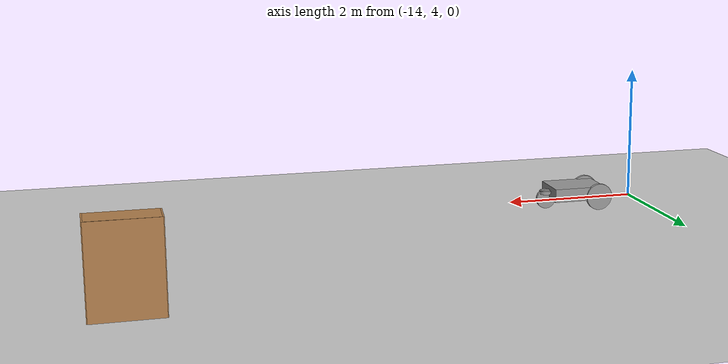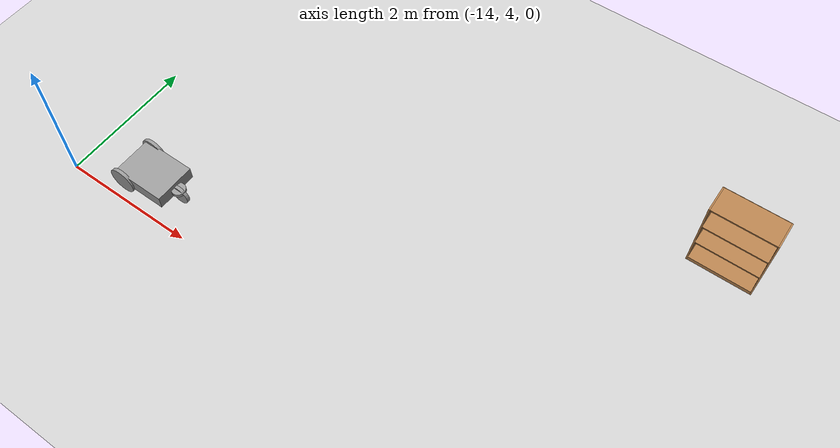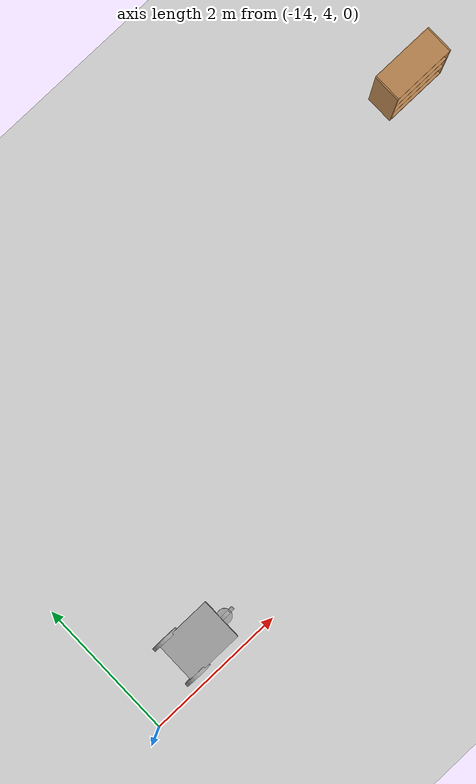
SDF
<sdf version="1.6">
 <world name="default">
  <model name="ground_plane">
   <static>1</static>
   <link name="link">
    <collision name="collision">
     <geometry><plane><normal>0 0 1</normal><size>100 100</size></plane></geometry>
     <surface><friction><ode><mu>100</mu><mu2>50</mu2></ode></friction></surface>
    </collision>
    <visual name="visual">
     <cast_shadows>0</cast_shadows>
     <geometry><plane><normal>0 0 1</normal><size>100 100</size></plane></geometry>
     <material>
      <script><uri>file://media/materials/scripts/gazebo.material</uri><name>Gazebo/Grey</name></script>
     </material>
    </visual>
   </link>
  </model>
  <model name="bookshelf_0">
   <static>1</static>
   <link name="link">
    <inertial><mass>1</mass></inertial>
    <collision name="back">
     <pose>0 0.005 0.6 0 -0 0</pose>
     <geometry><box><size>0.9 0.01 1.2</size></box></geometry>
    </collision>
    <visual name="visual1">
     <pose>0 0.005 0.6 0 -0 0</pose>
     <geometry><box><size>0.9 0.01 1.2</size></box></geometry>
     <material>
      <script><uri>file://media/materials/scripts/gazebo.material</uri><name>Gazebo/Wood</name></script>
     </material>
    </visual>
    <collision name="left_side">
     <pose>0.45 -0.195 0.6 0 -0 0</pose>
     <geometry><box><size>0.02 0.4 1.2</size></box></geometry>
    </collision>
    <visual name="visual2">
     <pose>0.45 -0.195 0.6 0 -0 0</pose>
     <geometry><box><size>0.02 0.4 1.2</size></box></geometry>
     <material>
      <script><uri>file://media/materials/scripts/gazebo.material</uri><name>Gazebo/Wood</name></script>
     </material>
    </visual>
    <collision name="right_side">
     <pose>-0.45 -0.195 0.6 0 -0 0</pose>
     <geometry><box><size>0.02 0.4 1.2</size></box></geometry>
    </collision>
    <visual name="visual3">
     <pose>-0.45 -0.195 0.6 0 -0 0</pose>
     <geometry><box><size>0.02 0.4 1.2</size></box></geometry>
     <material>
      <script><uri>file://media/materials/scripts/gazebo.material</uri><name>Gazebo/Wood</name></script>
     </material>
    </visual>
    <collision name="bottom">
     <pose>0 -0.195 0.03 0 -0 0</pose>
     <geometry><box><size>0.88 0.4 0.06</size></box></geometry>
    </collision>
    <visual name="visual4">
     <pose>0 -0.195 0.03 0 -0 0</pose>
     <geometry><box><size>0.88 0.4 0.06</size></box></geometry>
     <material>
      <script><uri>file://media/materials/scripts/gazebo.material</uri><name>Gazebo/Wood</name></script>
     </material>
    </visual>
    <collision name="top">
     <pose>0 -0.195 1.19 0 -0 0</pose>
     <geometry><box><size>0.88 0.4 0.02</size></box></geometry>
    </collision>
    <visual name="visual5">
     <pose>0 -0.195 1.19 0 -0 0</pose>
     <geometry><box><size>0.88 0.4 0.02</size></box></geometry>
     <material>
      <script><uri>file://media/materials/scripts/gazebo.material</uri><name>Gazebo/Wood</name></script>
     </material>
    </visual>
    <collision name="low_shelf">
     <pose>0 -0.195 0.43 0 -0 0</pose>
     <geometry><box><size>0.88 0.4 0.02</size></box></geometry>
    </collision>
    <visual name="visual6">
     <pose>0 -0.195 0.43 0 -0 0</pose>
     <geometry><box><size>0.88 0.4 0.02</size></box></geometry>
     <material>
      <script><uri>file://media/materials/scripts/gazebo.material</uri><name>Gazebo/Wood</name></script>
     </material>
    </visual>
    <collision name="high_shelf">
     <pose>0 -0.195 0.8 0 -0 0</pose>
     <geometry><box><size>0.88 0.4 0.02</size></box></geometry>
    </collision>
    <visual name="visual7">
     <pose>0 -0.195 0.8 0 -0 0</pose>
     <geometry><box><size>0.88 0.4 0.02</size></box></geometry>
     <material>
      <script><uri>file://media/materials/scripts/gazebo.material</uri><name>Gazebo/Wood</name></script>
     </material>
    </visual>
   </link>
   <pose>-5.99911 8.00478 0 0 -0 0</pose>
  </model>
  <model name="mycart_clone">
   <link name="link_1">
    <pose>-0.06 0 0.04 0 -0 0</pose>
    <inertial>
     <mass>1</mass>
     <inertia>
      <ixx>0.166667</ixx>
      <ixy>0</ixy>
      <ixz>0</ixz>
      <iyy>0.166667</iyy>
      <iyz>0</iyz>
      <izz>0.166667</izz>
     </inertia>
    </inertial>
    <visual name="visual">
     <geometry><box><size>0.8 0.6 0.2</size></box></geometry>
     <material>
      <lighting>1</lighting>
      <script><uri>file://media/materials/scripts/gazebo.material</uri><name>Gazebo/Grey</name></script>
      <shader type="pixel"><normal_map>__default__</normal_map></shader>
      <ambient>0.3 0.3 0.3 1</ambient>
      <diffuse>0.7 0.7 0.7 1</diffuse>
      <specular>0.01 0.01 0.01 1</specular>
      <emissive>0 0 0 1</emissive>
     </material>
    </visual>
    <collision name="collision">
     <geometry><box><size>0.8 0.6 0.2</size></box></geometry>
     <surface>
      <friction>
       <ode><mu>1</mu><mu2>1</mu2><fdir1>0 0 0</fdir1><slip1>0</slip1><slip2>0</slip2></ode>
       <torsional>
        <coefficient>1</coefficient>
        <patch_radius>0</patch_radius>
        <surface_radius>0</surface_radius>
        <use_patch_radius>1</use_patch_radius>
        <ode><slip>0</slip></ode>
       </torsional>
      </friction>
      <bounce><restitution_coefficient>0</restitution_coefficient><threshold>1e+06</threshold></bounce>
      <contact>
       <collide_without_contact>0</collide_without_contact>
       <collide_without_contact_bitmask>1</collide_without_contact_bitmask>
       <collide_bitmask>1</collide_bitmask>
       <ode>
        <soft_cfm>0</soft_cfm>
        <soft_erp>0.2</soft_erp>
        <kp>1e+13</kp>
        <kd>1</kd>
        <max_vel>0.01</max_vel>
        <min_depth>0</min_depth>
       </ode>
       <bullet>
        <split_impulse>1</split_impulse>
        <split_impulse_penetration_threshold>-0.01</split_impulse_penetration_threshold>
        <soft_cfm>0</soft_cfm>
        <soft_erp>0.2</soft_erp>
        <kp>1e+13</kp>
        <kd>1</kd>
       </bullet>
      </contact>
     </surface>
    </collision>
   </link>
   <link name="link_2">
    <pose>-0.36 0.3 -0.01 1.5707 -0 0</pose>
    <inertial>
     <mass>1</mass>
     <inertia><ixx>0.145833</ixx><ixy>0</ixy><ixz>0</ixz><iyy>0.145833</iyy><iyz>0</iyz><izz>0.125</izz></inertia>
    </inertial>
    <visual name="visual">
     <geometry><cylinder><radius>0.2</radius><length>0.05</length></cylinder></geometry>
     <material>
      <lighting>1</lighting>
      <script><uri>file://media/materials/scripts/gazebo.material</uri><name>Gazebo/Grey</name></script>
      <shader type="pixel"><normal_map>__default__</normal_map></shader>
      <ambient>0.3 0.3 0.3 1</ambient>
      <diffuse>0.7 0.7 0.7 1</diffuse>
      <specular>0.01 0.01 0.01 1</specular>
      <emissive>0 0 0 1</emissive>
     </material>
    </visual>
    <collision name="collision">
     <geometry><cylinder><radius>0.2</radius><length>0.05</length></cylinder></geometry>
     <surface>
      <friction>
       <ode><mu>1</mu><mu2>1</mu2><fdir1>0 0 0</fdir1><slip1>0</slip1><slip2>0</slip2></ode>
       <torsional>
        <coefficient>1</coefficient>
        <patch_radius>0</patch_radius>
        <surface_radius>0</surface_radius>
        <use_patch_radius>1</use_patch_radius>
        <ode><slip>0</slip></ode>
       </torsional>
      </friction>
      <bounce><restitution_coefficient>0</restitution_coefficient><threshold>1e+06</threshold></bounce>
      <contact>
       <collide_without_contact>0</collide_without_contact>
       <collide_without_contact_bitmask>1</collide_without_contact_bitmask>
       <collide_bitmask>1</collide_bitmask>
       <ode>
        <soft_cfm>0</soft_cfm>
        <soft_erp>0.2</soft_erp>
        <kp>1e+13</kp>
        <kd>1</kd>
        <max_vel>0.01</max_vel>
        <min_depth>0</min_depth>
       </ode>
       <bullet>
        <split_impulse>1</split_impulse>
        <split_impulse_penetration_threshold>-0.01</split_impulse_penetration_threshold>
        <soft_cfm>0</soft_cfm>
        <soft_erp>0.2</soft_erp>
        <kp>1e+13</kp>
        <kd>1</kd>
       </bullet>
      </contact>
     </surface>
    </collision>
   </link>
   <link name="link_2_clone">
    <pose>-0.36 -0.3 -0.01 1.5707 -0 0</pose>
    <inertial>
     <mass>1</mass>
     <inertia><ixx>0.145833</ixx><ixy>0</ixy><ixz>0</ixz><iyy>0.145833</iyy><iyz>0</iyz><izz>0.125</izz></inertia>
    </inertial>
    <visual name="visual">
     <geometry><cylinder><radius>0.2</radius><length>0.05</length></cylinder></geometry>
     <material>
      <lighting>1</lighting>
      <script><uri>file://media/materials/scripts/gazebo.material</uri><name>Gazebo/Grey</name></script>
      <shader type="pixel"><normal_map>__default__</normal_map></shader>
      <ambient>0.3 0.3 0.3 1</ambient>
      <diffuse>0.7 0.7 0.7 1</diffuse>
      <specular>0.01 0.01 0.01 1</specular>
      <emissive>0 0 0 1</emissive>
     </material>
    </visual>
    <collision name="collision">
     <geometry><cylinder><radius>0.2</radius><length>0.05</length></cylinder></geometry>
     <surface>
      <friction>
       <ode><mu>1</mu><mu2>1</mu2><fdir1>0 0 0</fdir1><slip1>0</slip1><slip2>0</slip2></ode>
       <torsional>
        <coefficient>1</coefficient>
        <patch_radius>0</patch_radius>
        <surface_radius>0</surface_radius>
        <use_patch_radius>1</use_patch_radius>
        <ode><slip>0</slip></ode>
       </torsional>
      </friction>
      <bounce><restitution_coefficient>0</restitution_coefficient><threshold>1e+06</threshold></bounce>
      <contact>
       <collide_without_contact>0</collide_without_contact>
       <collide_without_contact_bitmask>1</collide_without_contact_bitmask>
       <collide_bitmask>1</collide_bitmask>
       <ode>
        <soft_cfm>0</soft_cfm>
        <soft_erp>0.2</soft_erp>
        <kp>1e+13</kp>
        <kd>1</kd>
        <max_vel>0.01</max_vel>
        <min_depth>0</min_depth>
       </ode>
       <bullet>
        <split_impulse>1</split_impulse>
        <split_impulse_penetration_threshold>-0.01</split_impulse_penetration_threshold>
        <soft_cfm>0</soft_cfm>
        <soft_erp>0.2</soft_erp>
        <kp>1e+13</kp>
        <kd>1</kd>
       </bullet>
      </contact>
     </surface>
    </collision>
   </link>
   <link name="link_3">
    <pose>0.39 0 0.04 0 -0 0</pose>
    <inertial>
     <mass>1</mass>
     <inertia><ixx>0.145833</ixx><ixy>0</ixy><ixz>0</ixz><iyy>0.145833</iyy><iyz>0</iyz><izz>0.125</izz></inertia>
    </inertial>
    <visual name="visual">
     <geometry><cylinder><radius>0.1</radius><length>0.05</length></cylinder></geometry>
     <material>
      <lighting>1</lighting>
      <script><uri>file://media/materials/scripts/gazebo.material</uri><name>Gazebo/Grey</name></script>
      <shader type="pixel"><normal_map>__default__</normal_map></shader>
      <ambient>0.3 0.3 0.3 1</ambient>
      <diffuse>0.7 0.7 0.7 1</diffuse>
      <specular>0.01 0.01 0.01 1</specular>
      <emissive>0 0 0 1</emissive>
     </material>
    </visual>
    <collision name="collision">
     <geometry><cylinder><radius>0.1</radius><length>0.05</length></cylinder></geometry>
     <surface>
      <friction>
       <ode><mu>1</mu><mu2>1</mu2><fdir1>0 0 0</fdir1><slip1>0</slip1><slip2>0</slip2></ode>
       <torsional>
        <coefficient>1</coefficient>
        <patch_radius>0</patch_radius>
        <surface_radius>0</surface_radius>
        <use_patch_radius>1</use_patch_radius>
        <ode><slip>0</slip></ode>
       </torsional>
      </friction>
      <bounce><restitution_coefficient>0</restitution_coefficient><threshold>1e+06</threshold></bounce>
      <contact>
       <collide_without_contact>0</collide_without_contact>
       <collide_without_contact_bitmask>1</collide_without_contact_bitmask>
       <collide_bitmask>1</collide_bitmask>
       <ode>
        <soft_cfm>0</soft_cfm>
        <soft_erp>0.2</soft_erp>
        <kp>1e+13</kp>
        <kd>1</kd>
        <max_vel>0.01</max_vel>
        <min_depth>0</min_depth>
       </ode>
       <bullet>
        <split_impulse>1</split_impulse>
        <split_impulse_penetration_threshold>-0.01</split_impulse_penetration_threshold>
        <soft_cfm>0</soft_cfm>
        <soft_erp>0.2</soft_erp>
        <kp>1e+13</kp>
        <kd>1</kd>
       </bullet>
      </contact>
     </surface>
    </collision>
   </link>
   <link name="link_4">
    <pose>0.39 0 -0.06 1.5707 -0 0</pose>
    <inertial>
     <mass>1</mass>
     <inertia><ixx>0.145833</ixx><ixy>0</ixy><ixz>0</ixz><iyy>0.145833</iyy><iyz>0</iyz><izz>0.125</izz></inertia>
    </inertial>
    <visual name="visual">
     <geometry><cylinder><radius>0.15</radius><length>0.05</length></cylinder></geometry>
     <material>
      <lighting>1</lighting>
      <script><uri>file://media/materials/scripts/gazebo.material</uri><name>Gazebo/Grey</name></script>
      <shader type="pixel"><normal_map>__default__</normal_map></shader>
      <ambient>0.3 0.3 0.3 1</ambient>
      <diffuse>0.7 0.7 0.7 1</diffuse>
      <specular>0.01 0.01 0.01 1</specular>
      <emissive>0 0 0 1</emissive>
     </material>
    </visual>
    <collision name="collision">
     <geometry><cylinder><radius>0.15</radius><length>0.05</length></cylinder></geometry>
     <surface>
      <friction>
       <ode><mu>1</mu><mu2>1</mu2><fdir1>0 0 0</fdir1><slip1>0</slip1><slip2>0</slip2></ode>
       <torsional>
        <coefficient>1</coefficient>
        <patch_radius>0</patch_radius>
        <surface_radius>0</surface_radius>
        <use_patch_radius>1</use_patch_radius>
        <ode><slip>0</slip></ode>
       </torsional>
      </friction>
      <bounce><restitution_coefficient>0</restitution_coefficient><threshold>1e+06</threshold></bounce>
      <contact>
       <collide_without_contact>0</collide_without_contact>
       <collide_without_contact_bitmask>1</collide_without_contact_bitmask>
       <collide_bitmask>1</collide_bitmask>
       <ode>
        <soft_cfm>0</soft_cfm>
        <soft_erp>0.2</soft_erp>
        <kp>1e+13</kp>
        <kd>1</kd>
        <max_vel>0.01</max_vel>
        <min_depth>0</min_depth>
       </ode>
       <bullet>
        <split_impulse>1</split_impulse>
        <split_impulse_penetration_threshold>-0.01</split_impulse_penetration_threshold>
        <soft_cfm>0</soft_cfm>
        <soft_erp>0.2</soft_erp>
        <kp>1e+13</kp>
        <kd>1</kd>
       </bullet>
      </contact>
     </surface>
    </collision>
   </link>
   <joint name="link_1_JOINT_1" type="revolute">
    <parent>link_1</parent>
    <child>link_2</child>
    <pose>0 0 0 0 -0.01 0</pose>
    <axis>
     <xyz>1 0 0</xyz>
     <limit>
      <lower>-1.79769e+308</lower>
      <upper>1.79769e+308</upper>
      <effort>-1</effort>
      <velocity>-1</velocity>
     </limit>
     <dynamics>
      <spring_reference>0</spring_reference>
      <spring_stiffness>0</spring_stiffness>
      <damping>0</damping>
     </dynamics>
    </axis>
    <physics>
     <ode><limit><cfm>0</cfm><erp>0.2</erp></limit><suspension><cfm>0</cfm><erp>0.2</erp></suspension></ode>
    </physics>
   </joint>
   <joint name="link_1_JOINT_2" type="revolute">
    <parent>link_1</parent>
    <child>link_2_clone</child>
    <axis>
     <xyz>1 0 0</xyz>
     <limit>
      <lower>-1.79769e+308</lower>
      <upper>1.79769e+308</upper>
      <effort>-1</effort>
      <velocity>-1</velocity>
     </limit>
     <dynamics>
      <spring_reference>0</spring_reference>
      <spring_stiffness>0</spring_stiffness>
      <damping>0</damping>
     </dynamics>
    </axis>
    <physics>
     <ode><limit><cfm>0</cfm><erp>0.2</erp></limit><suspension><cfm>0</cfm><erp>0.2</erp></suspension></ode>
    </physics>
   </joint>
   <joint name="link_1_JOINT_4" type="revolute">
    <parent>link_1</parent>
    <child>link_3</child>
    <axis>
     <xyz>1 0 0</xyz>
     <limit>
      <lower>-1.79769e+308</lower>
      <upper>1.79769e+308</upper>
      <effort>-1</effort>
      <velocity>-1</velocity>
     </limit>
     <dynamics>
      <spring_reference>0</spring_reference>
      <spring_stiffness>0</spring_stiffness>
      <damping>0</damping>
      <friction>0</friction>
     </dynamics>
    </axis>
    <physics>
     <ode><limit><cfm>0</cfm><erp>0.2</erp></limit><suspension><cfm>0</cfm><erp>0.2</erp></suspension></ode>
    </physics>
   </joint>
   <joint name="link_3_JOINT_7" type="revolute">
    <parent>link_3</parent>
    <child>link_4</child>
    <axis>
     <xyz>1 0 0</xyz>
     <limit>
      <lower>-1.79769e+308</lower>
      <upper>1.79769e+308</upper>
      <effort>-1</effort>
      <velocity>-1</velocity>
     </limit>
     <dynamics>
      <spring_reference>0</spring_reference>
      <spring_stiffness>0</spring_stiffness>
      <damping>0</damping>
     </dynamics>
    </axis>
    <physics>
     <ode><limit><cfm>0</cfm><erp>0.2</erp></limit><suspension><cfm>0</cfm><erp>0.2</erp></suspension></ode>
    </physics>
   </joint>
   <static>0</static>
   <pose>-12.8121 4.45005 0.209976 0 6.7e-05 -0.002028</pose>
  </model>
 </world>
</sdf>
